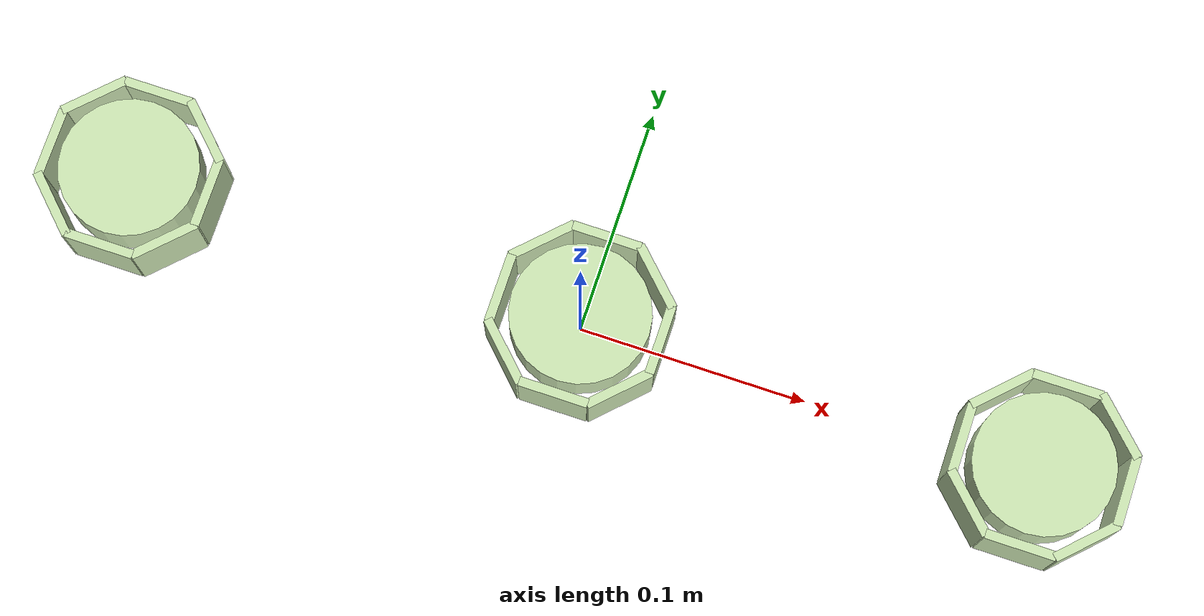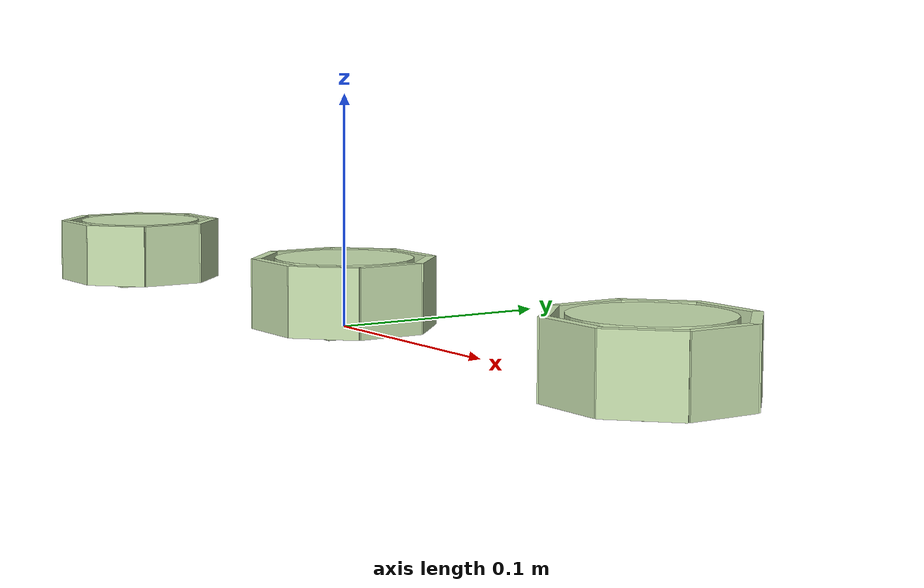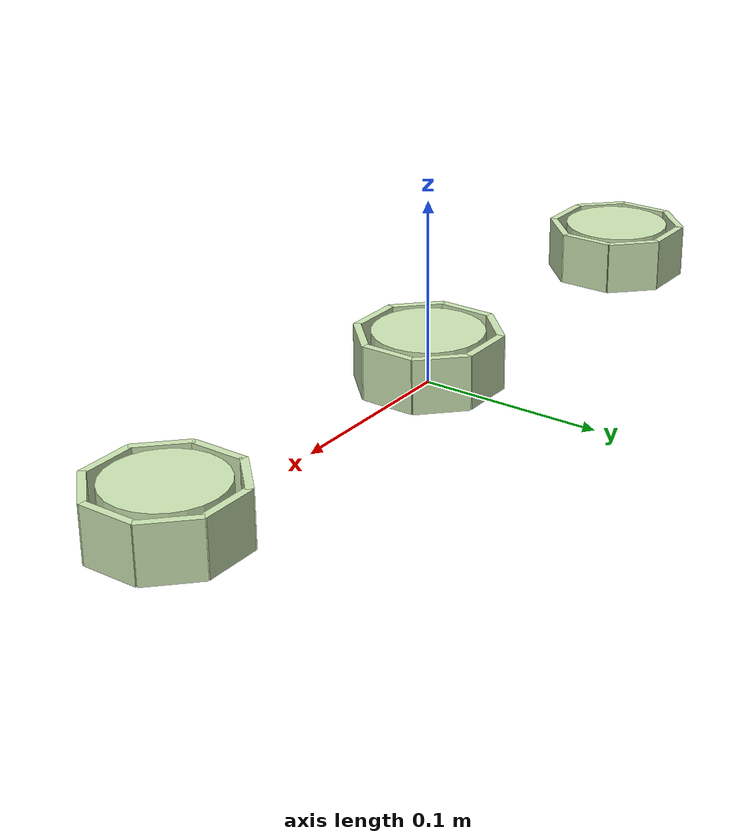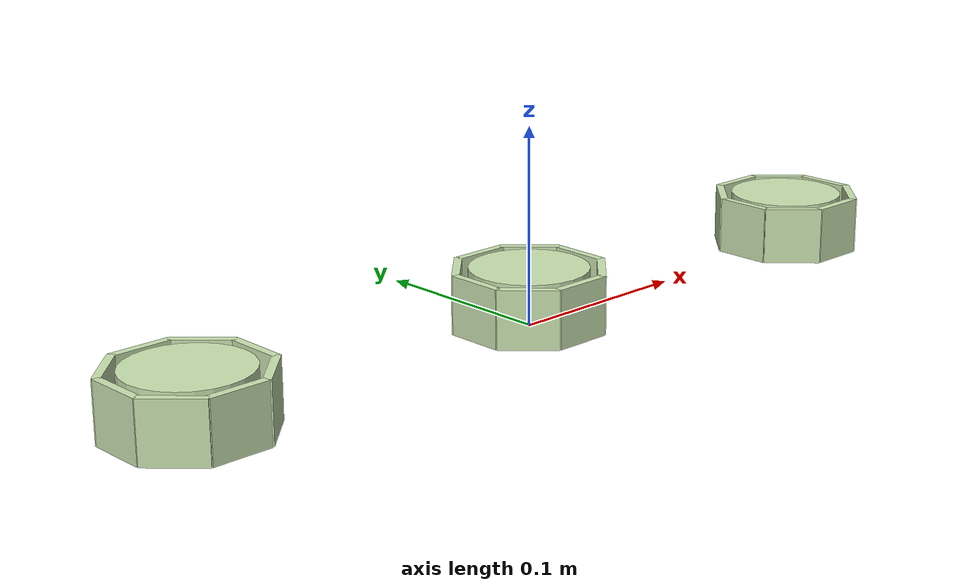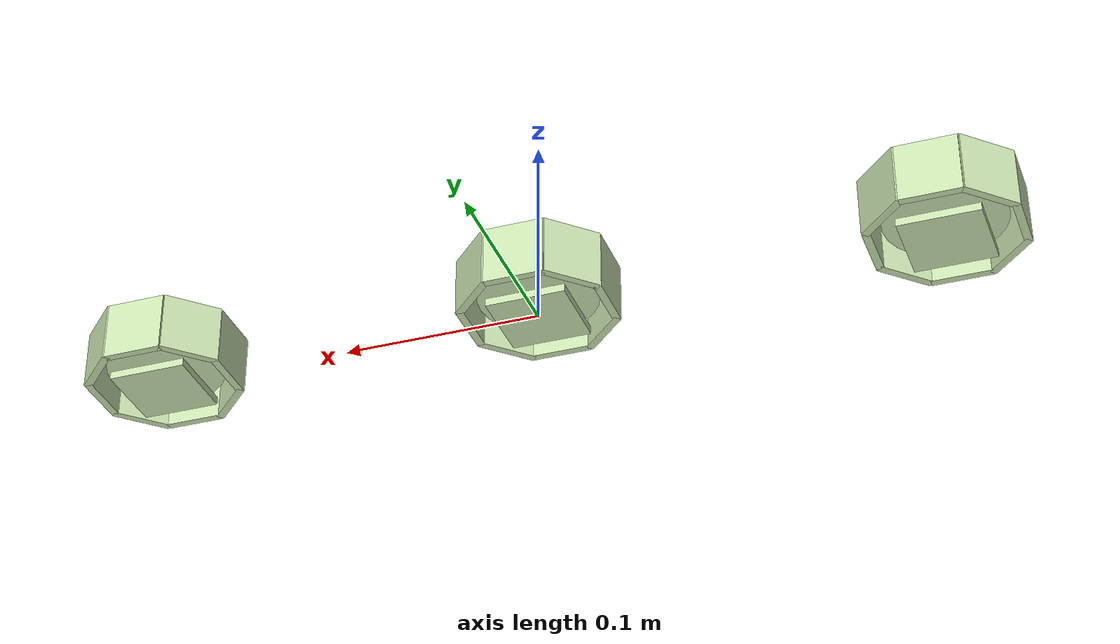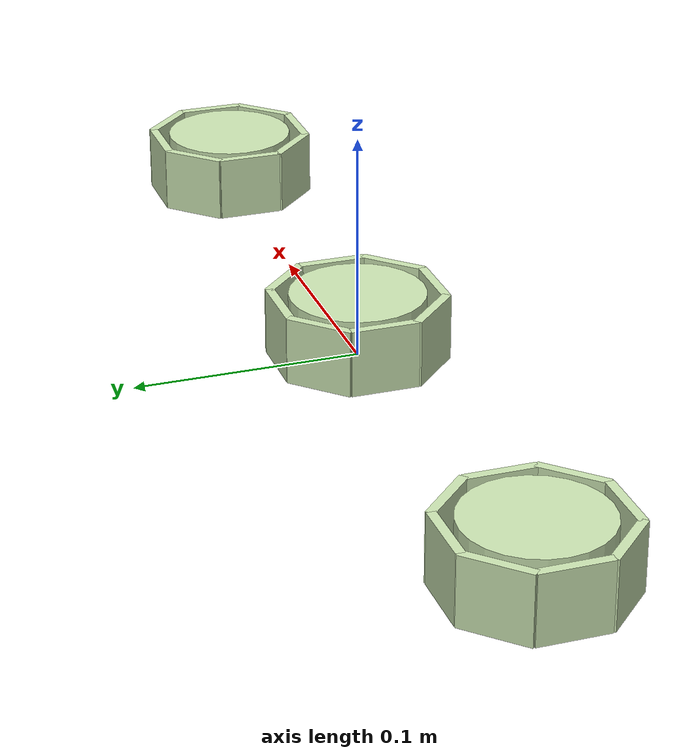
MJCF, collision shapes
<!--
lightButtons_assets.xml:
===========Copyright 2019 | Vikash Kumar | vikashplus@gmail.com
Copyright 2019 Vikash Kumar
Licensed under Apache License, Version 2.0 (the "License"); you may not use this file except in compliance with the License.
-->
<mujoco model="light_switches">
    <compiler angle="radian" meshdir="" texturedir=""/>

    <!-- Include assets if they exist -->
    <include file="lightButtons_assets.xml"/>

    <worldbody>
        <body name="light_switches" pos="0 0 0">
            <!-- Include body if it exists -->
            <include file="buttons_body.xml"/>
        </body>
    </worldbody>
</mujoco>

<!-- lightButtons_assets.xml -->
<mujocoinclude>

    <asset>
        <mesh name="ButtonHolder" file="meshes/ButtonHolder.stl" scale="0.01 0.01 0.01" />
        <mesh name="lightsHolder" file="meshes/ButtonHolder.stl" scale="0.02 0.01 0.02" />
        <texture name="T_Metal_lightButton" type="cube" height="1" width="1" file="textures/metal0.png" />
        <material name="M_Metal_lightButton" texture="T_Metal_lightButton" texrepeat="3 3" reflectance="0.7" texuniform="false" />
	</asset>

    <default>
        <default class="class_button_col" >
            <geom contype="1" conaffinity="1" rgba="0.8 0.9 0.7 1.0" group='4'/>
            <joint limited="true" damping="0" stiffness="0" range="-0.005 0" />
        </default>

        <default class="viz_holder" >
            <geom contype="0" conaffinity="0" group="1" material='M_Metal_lightButton'/>
        </default>

        <default class="class_lights_viz" >
            <geom contype="0" conaffinity="0" group="1" />
            <joint limited="true" damping="0" stiffness="0" range="-0.005 0" />
        </default>

         <default class="class_lights_col" >
            <geom contype="1" conaffinity="1" rgba="0.8 0.9 0.7 1.0" group='4'/>
        </default>
   </default>

</mujocoinclude>

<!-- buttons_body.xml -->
<mujocoinclude>

    <body name="red button" pos="-.2 0 0" childclass='class_button_col'>
        <geom class="viz_holder" type="mesh" mesh="ButtonHolder" euler="-1.57 0 3.14"/>
        <geom type="box" size=".002 .015 .015" pos="0.035 0 .015" />
        <geom type="box" size=".002 .015 .015" pos="-0.035 0 .015" />
        <geom type="box" size=".002 .015 .015" pos="0 0.035 .015" euler="0 0 1.57" />
        <geom type="box" size=".002 .015 .015" pos="0 -0.035 .015" rgba="0.8 0.9 0.7 1.0" euler="0 0 1.57" />
        <geom type="box" size=".002 .015 .015" pos="0.025 0.025 .015" euler="0 0 0.785" />
        <geom type="box" size=".002 .015 .015" pos="-0.025 0.025 .015" rgba="0.8 0.9 0.7 1.0" euler="0 0 -.785" />
        <geom type="box" size=".002 .015 .015" pos="0.025 -0.025 .015" euler="0 0 -0.785" />
        <geom type="box" size=".002 .015 .015" pos="-0.025 -0.025 .015" rgba="0.8 0.9 0.7 1.0" euler="0 0 .785" />
        <geom type="box" size=".02 .02 .002" pos="0 0 0" />
        <body >
            <geom type="cylinder" size=".03 .01" pos='0 0 .02' class='class_button_col' mass="0.01" />
            <geom type="cylinder" size=".03 .01" pos='0 0 .02' rgba="0.3 0 0 1.0" class="viz_holder"/>
            <joint name="red button" type="slide" pos="0 0 0" axis="0 0 1" damping="1" stiffness="10" />
            <site name="red_button_site" type="sphere" pos="0 0 0.02" size="0.03" rgba="0 0 0 0"/>
        </body>
    </body>

    <body name="green button" pos="0 0 0" childclass='class_button_col'>
        <geom class="viz_holder" type="mesh" mesh="ButtonHolder" euler="-1.57 0 3.14"/>
        <geom type="box" size=".002 .015 .015" pos="0.035 0 .015" />
        <geom type="box" size=".002 .015 .015" pos="-0.035 0 .015" />
        <geom type="box" size=".002 .015 .015" pos="0 0.035 .015" euler="0 0 1.57" />
        <geom type="box" size=".002 .015 .015" pos="0 -0.035 .015" rgba="0.8 0.9 0.7 1.0" euler="0 0 1.57" />
        <geom type="box" size=".002 .015 .015" pos="0.025 0.025 .015" euler="0 0 0.785" />
        <geom type="box" size=".002 .015 .015" pos="-0.025 0.025 .015" rgba="0.8 0.9 0.7 1.0" euler="0 0 -.785" />
        <geom type="box" size=".002 .015 .015" pos="0.025 -0.025 .015" euler="0 0 -0.785" />
        <geom type="box" size=".002 .015 .015" pos="-0.025 -0.025 .015" rgba="0.8 0.9 0.7 1.0" euler="0 0 .785" />
        <geom type="box" size=".02 .02 .002" pos="0 0 0" />
        <body >
            <geom type="cylinder"  size=".03 .01" pos='0 0 .02' class='class_button_col' mass="0.01" />
            <geom type="cylinder"  size=".03 .01" pos='0 0 .02' rgba="0 0.3 0 1.0" class="viz_holder"/>
            <joint name="green button" type="slide" pos="0 0 0" axis="0 0 1" damping="1" stiffness="10" />
        </body>
    </body>

    <body name="blue button" pos="0.2 0 0" childclass='class_button_col'>
        <geom class="viz_holder" type="mesh" mesh="ButtonHolder" euler="-1.57 0 3.14" />
        <geom type="box" size=".002 .015 .015" pos="0.035 0 .015" />
        <geom type="box" size=".002 .015 .015" pos="-0.035 0 .015" />
        <geom type="box" size=".002 .015 .015" pos="0 0.035 .015" euler="0 0 1.57" />
        <geom type="box" size=".002 .015 .015" pos="0 -0.035 .015" rgba="0.8 0.9 0.7 1.0" euler="0 0 1.57" />
        <geom type="box" size=".002 .015 .015" pos="0.025 0.025 .015" euler="0 0 0.785" />
        <geom type="box" size=".002 .015 .015" pos="-0.025 0.025 .015" rgba="0.8 0.9 0.7 1.0" euler="0 0 -.785" />
        <geom type="box" size=".002 .015 .015" pos="0.025 -0.025 .015" euler="0 0 -0.785" />
        <geom type="box" size=".002 .015 .015" pos="-0.025 -0.025 .015" rgba="0.8 0.9 0.7 1.0" euler="0 0 .785" />
        <geom type="box" size=".02 .02 .002" pos="0 0 0" />
        <body >
            <geom type="cylinder"  size=".03 .01" pos='0 0 .02' class='class_button_col' mass="0.01" />
            <geom type="cylinder"  size=".03 .01" pos='0 0 .02' rgba="0 0 0.3 1.0" class="viz_holder"/>
            <joint name="blue button" type="slide" pos="0 0 0" axis="0 0 1" damping="1" stiffness="10" />
        </body>
    </body>

</mujocoinclude>
